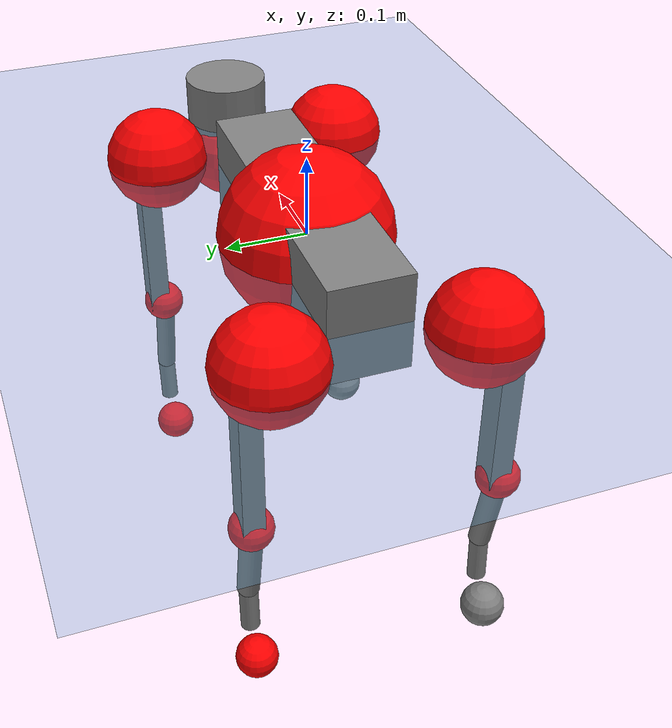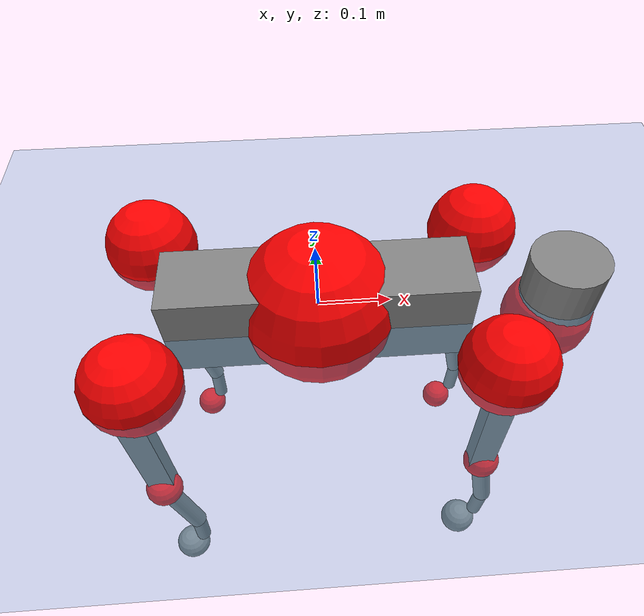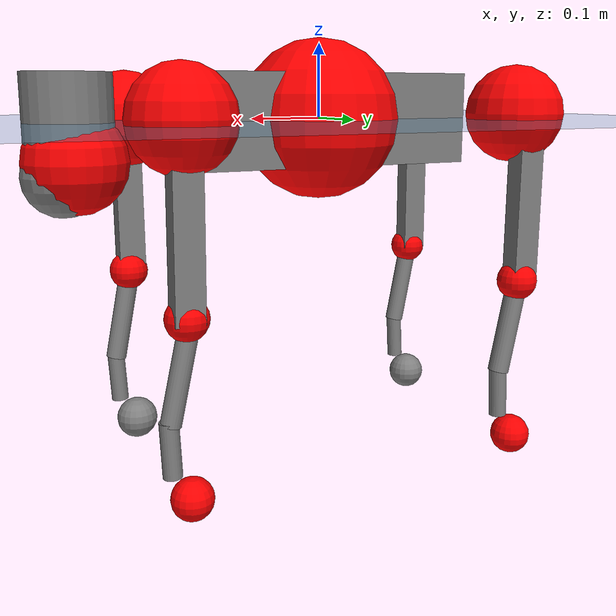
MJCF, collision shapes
<mujoco model="go2">
  <compiler angle="radian" assetdir="assets" balanceinertia="true" inertiafromgeom="false"/>

  <option timestep="0.005" density="1.2" viscosity="2e-05"/>

  <size nkey="1"/>

  <visual>
    <quality shadowsize="8192"/>
    <map shadowclip="0.5"/>
  </visual>

  <default>
    <default class="/">
      <geom contype="0" conaffinity="0" group="1" solref="-1000 -80"/>
      <site size="0.01 0.005 0.005" group="5"/>
      <general forcelimited="true" biastype="affine" gainprm="20" biasprm="0 -20 -0.5"/>
      <default class="go2">
        <joint armature="0.01" damping="0.01" frictionloss="0.2"/>
        <geom condim="1" margin="0.001"/>
        <default class="visual">
          <geom type="mesh" group="2"/>
        </default>
        <default class="collision">
          <geom group="3"/>
          <default class="foot">
            <geom size="0.022 0 0" condim="6" priority="1" friction="0.8 0.02 0.01" solimp="0.015 1 0.022"/>
          </default>
        </default>
        <default class="reward_collision_sphere">
          <geom group="5" rgba="1 0 0 1"/>
        </default>
      </default>
    </default>
  </default>

  <asset>
    <texture type="skybox" colorspace="auto" name="//unnamed_texture_0" builtin="gradient" rgb1="0.95 0.95 0.95" rgb2="0.95 0.95 0.95" width="100" height="600"/>
    <texture type="2d" colorspace="auto" name="texplane" builtin="checker" rgb1="0.345 0.575 0.748" rgb2="0.345 0.575 0.748" markrgb="1 1 1" width="512" height="512"/>
    <material name="MatPlane" class="/" texture="texplane" texuniform="true" texrepeat="2 2" specular="0.9"/>
    <material name="metal" class="/" rgba="0.9 0.95 0.95 1"/>
    <material name="black" class="/" rgba="0 0 0 1"/>
    <material name="white" class="/"/>
    <material name="gray" class="/" rgba="0.671705 0.692426 0.77427 1"/>
    <mesh name="base_0" class="/" file="base_0.obj"/>
    <mesh name="base_1" class="/" file="base_1.obj"/>
    <mesh name="base_2" class="/" file="base_2.obj"/>
    <mesh name="base_3" class="/" file="base_3.obj"/>
    <mesh name="base_4" class="/" file="base_4.obj"/>
    <mesh name="hip_0" class="/" file="hip_0.obj"/>
    <mesh name="hip_1" class="/" file="hip_1.obj"/>
    <mesh name="thigh_0" class="/" file="thigh_0.obj"/>
    <mesh name="thigh_1" class="/" file="thigh_1.obj"/>
    <mesh name="thigh_mirror_0" class="/" file="thigh_mirror_0.obj"/>
    <mesh name="thigh_mirror_1" class="/" file="thigh_mirror_1.obj"/>
    <mesh name="calf_0" class="/" file="calf_0.obj"/>
    <mesh name="calf_1" class="/" file="calf_1.obj"/>
    <mesh name="calf_mirror_0" class="/" file="calf_mirror_0.obj"/>
    <mesh name="calf_mirror_1" class="/" file="calf_mirror_1.obj"/>
    <mesh name="foot" class="/" file="foot.obj"/>
  </asset>

  <worldbody>
    <geom name="floor" class="/" size="100 100 0.125" type="plane" group="0" material="MatPlane"/>
    <light name="toplight_shadow" class="/" pos="0 0 5" dir="0.0990148 0.0990148 -0.990148" type="directional" ambient="0.04 0.04 0.04" diffuse="0.55 0.55 0.55" specular="0.12 0.12 0.12"/>
    <light name="toplight_fill" class="/" pos="0 0 5" dir="0.0990148 0.0990148 -0.990148" type="directional" castshadow="false" ambient="0.04 0.04 0.04" diffuse="0.3 0.3 0.3" specular="0.08 0.08 0.08"/>
    <body name="trunk" childclass="go2" pos="6.11847e-05 5.0348e-05 -0.00119129" quat="0.999999 -0.000963606 -0.000663086 -0.000117167">
      <inertial pos="0.0356105 0.00760563 -0.00363909" quat="-0.000118304 0.714537 -0.00283773 0.699592" mass="8.11557" diaginertia="0.25302 0.109929 0.0350924"/>
      <joint name="//unnamed_joint_0" type="free" armature="0" damping="0" frictionloss="0"/>
      <geom name="//unnamed_geom_1" class="visual" material="black" mesh="base_0"/>
      <geom name="//unnamed_geom_2" class="visual" material="black" mesh="base_1"/>
      <geom name="//unnamed_geom_3" class="visual" material="black" mesh="base_2"/>
      <geom name="//unnamed_geom_4" class="visual" material="white" mesh="base_3"/>
      <geom name="//unnamed_geom_5" class="visual" material="gray" mesh="base_4"/>
      <geom name="trunk_1" class="collision" size="0.205145 0.0509864 0.0621653" type="box"/>
      <geom name="trunk_2" class="collision" size="0.0545309 0.0490778" pos="0.336654 0 0.010681" type="cylinder"/>
      <geom name="trunk_3" class="collision" size="0.0512591" pos="0.346104 0 -0.064086"/>
      <geom name="//unnamed_geom_9" class="reward_collision_sphere" size="0.109062"/>
      <geom name="//unnamed_geom_10" class="reward_collision_sphere" size="0.0654371" pos="0.330748 0 -0.0480645"/>
      <site name="imu" pos="-0.0739953 0.00243 0.0887171" size="0.0109062"/>
      <camera name="track" pos="0 -2.04503 0" quat="0.707107 0.707107 0 0" mode="trackcom"/>
      <camera name="ego_camera" pos="0.368547 0 0.0480645" quat="-0.5 -0.5 0.5 0.5"/>
      <body name="FL_hip" pos="0.23472 0.0543349 0.00659696" quat="1 -0.000211652 -0.000329545 0.000731503">
        <inertial pos="-0.0063858 0.00800896 -0.00190157" quat="0.497199 0.499412 0.503553 0.499815" mass="0.958222" diaginertia="0.00234504 0.000818731 0.000754161"/>
        <joint name="FL_hip_joint" pos="0 0 0" axis="0.999863 -0.0145282 -0.00797721" stiffness="0.0238945" range="-1.04213 1.0069" armature="0.0118975" damping="0" frictionloss="0.271353"/>
        <geom name="//unnamed_geom_11" class="visual" material="metal" mesh="hip_0"/>
        <geom name="//unnamed_geom_12" class="visual" material="gray" mesh="hip_1"/>
        <geom name="//unnamed_geom_13" class="collision" size="0.0501685 0.0218124" pos="0 0.0818012 0" quat="0.707107 0.707107 0 0" type="cylinder"/>
        <geom name="//unnamed_geom_14" class="reward_collision_sphere" size="0.0654371" pos="0 0.071576 0"/>
        <body name="FL_thigh" pos="0.00380217 0.0881387 -0.0033767" quat="0.999992 -0.00169585 -0.00259286 0.00265608">
          <inertial pos="-0.00225597 -0.0221503 -0.0383915" quat="0.832317 0.111737 -0.00696028 0.542877" mass="1.55722" diaginertia="0.0134553 0.00717992 0.0011847"/>
          <joint name="FL_thigh_joint" pos="0 0 0" axis="-9.12989e-05 1 -0.000908847" range="-1.72567 3.39538" armature="0.0110018" damping="0" frictionloss="0.258526"/>
          <geom name="//unnamed_geom_15" class="visual" material="metal" mesh="thigh_0"/>
          <geom name="//unnamed_geom_16" class="visual" material="gray" mesh="thigh_1"/>
          <geom name="//unnamed_geom_17" class="collision" size="0.116151 0.0133601 0.0185405" pos="0 0 -0.113753" quat="0.707107 0 0.707107 0" type="box"/>
          <body name="FL_calf" pos="-0.00200991 -0.00808178 -0.225801" quat="1 -3.15074e-05 8.03436e-05 2.30513e-06">
            <inertial pos="0.00626925 3.37694e-05 -0.148236" quat="0.714891 0.000208384 -0.00921863 0.699175" mass="0.312639" diaginertia="0.00368437 0.00165161 7.35023e-05"/>
            <joint name="FL_calf_joint" pos="0 0 0" axis="0.00386826 0.99999 0.00242086" stiffness="0.0368571" range="-2.81666 -0.808714" armature="0.0103997" damping="0.0153924" frictionloss="0.233686"/>
            <geom name="//unnamed_geom_18" class="visual" material="gray" mesh="calf_0"/>
            <geom name="//unnamed_geom_19" class="visual" material="black" mesh="calf_1"/>
            <geom name="FL_calf0" class="collision" size="0.0130874 0.0654371" pos="0.00944993 0 -0.064086" quat="0.994493 0 -0.104807 0" type="cylinder"/>
            <geom name="//unnamed_geom_21" class="collision" size="0.0119968 0.0354451" pos="0.0236248 0 -0.158079" quat="0.999688 0 0.0249974 0" type="cylinder"/>
            <geom name="//unnamed_geom_22" class="visual" pos="0 0 -0.227505" quat="1 0 0 0" material="black" mesh="foot"/>
            <geom name="FL_foot" class="foot" size="0.0255302" pos="-0.00236248 0 -0.227505"/>
            <geom name="//unnamed_geom_24" class="reward_collision_sphere" size="0.0272655"/>
            <geom name="//unnamed_geom_25" class="reward_collision_sphere" size="0.0272655" pos="-0.00236248 0 -0.227505"/>
            <site name="FL_foot" class="foot" pos="-0.00236248 0 -0.227505" size="0.0109062"/>
          </body>
        </body>
      </body>
      <body name="FR_hip" pos="0.237487 -0.0509953 7.1508e-05" quat="1 -0.000903116 0.000259614 -0.000108249">
        <inertial pos="-0.00196106 0.00897286 0.00460783" quat="0.458728 0.520322 0.495848 0.522464" mass="0.870485" diaginertia="0.00222797 0.000602509 0.000726363"/>
        <joint name="FR_hip_joint" pos="0 0 0" axis="0.999431 -0.0238417 0.023876" range="-1.0245 1.03162" armature="0.0108866" damping="0.036504" frictionloss="0.202373"/>
        <geom name="//unnamed_geom_26" class="visual" pos="0 -3.97113e-10 -1.7033e-08" quat="4.63268e-05 1 0 0" material="metal" mesh="hip_0"/>
        <geom name="//unnamed_geom_27" class="visual" pos="0 -6.43768e-10 4.21292e-08" quat="4.63268e-05 1 0 0" material="gray" mesh="hip_1"/>
        <geom name="//unnamed_geom_28" class="collision" size="0.0501685 0.0218124" pos="0 -0.0818012 0" quat="0.707107 0.707107 0 0" type="cylinder"/>
        <geom name="//unnamed_geom_29" class="reward_collision_sphere" size="0.0654371" pos="0 -0.071576 0"/>
        <body name="FR_thigh" pos="-0.00350293 -0.0940449 0.00741374" quat="0.999994 0.00238472 0.00182921 0.00196266">
          <inertial pos="-0.0133598 0.0235141 -0.0311687" quat="0.557697 -0.00473354 0.0741363 0.826714" mass="1.36167" diaginertia="0.0143008 0.00703354 0.00107614"/>
          <joint name="FR_thigh_joint" pos="0 0 0" axis="0.0125361 -0.999906 -0.00562095" range="-3.51453 1.55568" armature="0.0132257" damping="0" frictionloss="0.196054"/>
          <geom name="//unnamed_geom_30" class="visual" material="metal" mesh="thigh_mirror_0"/>
          <geom name="//unnamed_geom_31" class="visual" material="gray" mesh="thigh_mirror_1"/>
          <geom name="//unnamed_geom_32" class="collision" size="0.116151 0.0133601 0.0185405" pos="0 0 -0.113753" quat="0.707107 0 0.707107 0" type="box"/>
          <body name="FR_calf" pos="0.00379521 0.000101663 -0.227247" quat="0.999998 0.00149294 -0.000254296 0.00111855">
            <inertial pos="0.0136106 0.000771709 -0.15155" quat="0.673844 -0.0308669 0.00592466 0.738205" mass="0.274158" diaginertia="0.00307831 0.00155233 6.85578e-05"/>
            <joint name="FR_calf_joint" pos="0 0 0" axis="-0.0259746 -0.999659 -0.0028338" stiffness="0.0434557" range="1.01885 2.80349" armature="0.00702039" damping="0" frictionloss="0.192026"/>
            <geom name="//unnamed_geom_33" class="visual" material="gray" mesh="calf_mirror_0"/>
            <geom name="//unnamed_geom_34" class="visual" material="black" mesh="calf_mirror_1"/>
            <geom name="FR_calf0" class="collision" size="0.014178 0.0654371" pos="0.0118124 0 -0.064086" quat="0.995004 0 -0.0998334 0" type="cylinder"/>
            <geom name="//unnamed_geom_36" class="collision" size="0.0119968 0.0354451" pos="0.0236248 0 -0.158079" quat="0.999688 0 0.0249974 0" type="cylinder"/>
            <geom name="//unnamed_geom_37" class="visual" pos="0 0 -0.227505" quat="1 0 0 0" material="black" mesh="foot"/>
            <geom name="FR_foot" class="foot" size="0.0296565" pos="-0.00236248 0 -0.227505"/>
            <geom name="//unnamed_geom_39" class="reward_collision_sphere" size="0.0272655"/>
            <geom name="//unnamed_geom_40" class="reward_collision_sphere" size="0.0272655" pos="-0.00236248 0 -0.227505"/>
            <site name="FR_foot" class="foot" pos="-0.00236248 0 -0.227505" size="0.0109062"/>
          </body>
        </body>
      </body>
      <body name="RL_hip" pos="-0.236285 0.052584 0.00790143" quat="0.999999 0.000315509 -0.000411435 0.00127664">
        <inertial pos="0.00712901 -0.0030623 0.0096392" quat="0.491443 0.517986 0.508939 0.480786" mass="0.783773" diaginertia="0.00155398 0.000587037 0.000615981"/>
        <joint name="RL_hip_joint" pos="0 0 0" axis="-0.999466 -0.0214157 0.0246597" stiffness="0.0117216" range="-1.07078 1.02195" armature="0.00962572" damping="0.0498499" frictionloss="0.223758"/>
        <geom name="//unnamed_geom_41" class="visual" pos="-9.85645e-10 0 -1.93209e-07" quat="4.63268e-05 0 1 0" material="metal" mesh="hip_0"/>
        <geom name="//unnamed_geom_42" class="visual" pos="-1.59785e-09 0 -1.71349e-07" quat="4.63268e-05 0 1 0" material="gray" mesh="hip_1"/>
        <geom name="//unnamed_geom_43" class="collision" size="0.0501685 0.0218124" pos="0 0.0818012 0" quat="0.707107 0.707107 0 0" type="cylinder"/>
        <geom name="//unnamed_geom_44" class="reward_collision_sphere" size="0.0654371" pos="0 0.071576 0"/>
        <body name="RL_thigh" pos="-0.000476391 0.0993431 -0.00278556" quat="1 -0.000335985 -0.000244352 0.000630549">
          <inertial pos="0.00625011 -0.0238593 -0.0254426" quat="0.832276 0.0811217 -0.0217323 0.547963" mass="1.63104" diaginertia="0.0164403 0.00650349 0.00127886"/>
          <joint name="RL_thigh_joint" pos="0 0 0" axis="0.0207162 0.99966 -0.0158551" range="-0.462252 4.63363" armature="0.0112474" damping="0.0378869" frictionloss="0.222512"/>
          <geom name="//unnamed_geom_45" class="visual" material="metal" mesh="thigh_0"/>
          <geom name="//unnamed_geom_46" class="visual" material="gray" mesh="thigh_1"/>
          <geom name="//unnamed_geom_47" class="collision" size="0.116151 0.0133601 0.0185405" pos="0 0 -0.113753" quat="0.707107 0 0.707107 0" type="box"/>
          <body name="RL_calf" pos="0.00198738 -0.00217402 -0.225399" quat="1 -0.000172166 -0.000431542 -8.27654e-05">
            <inertial pos="0.0043471 -0.00848731 -0.15016" quat="0.709738 0.0183406 0.00962095 0.704161" mass="0.272314" diaginertia="0.00314726 0.00128075 6.33346e-05"/>
            <joint name="RL_calf_joint" pos="0 0 0" axis="-0.0126475 0.999906 -0.00532934" range="-2.87247 -0.733588" armature="0.00620545" damping="0" frictionloss="0.294089"/>
            <geom name="//unnamed_geom_48" class="visual" material="gray" mesh="calf_0"/>
            <geom name="//unnamed_geom_49" class="visual" material="black" mesh="calf_1"/>
            <geom name="RL_calf0" class="collision" size="0.014178 0.0654371" pos="0.0118124 0 -0.064086" quat="0.995004 0 -0.0998334 0" type="cylinder"/>
            <geom name="//unnamed_geom_51" class="collision" size="0.0119968 0.0354451" pos="0.0236248 0 -0.158079" quat="0.999688 0 0.0249974 0" type="cylinder"/>
            <geom name="//unnamed_geom_52" class="visual" pos="0 0 -0.227505" quat="1 0 0 0" material="black" mesh="foot"/>
            <geom name="RL_foot" class="foot" size="0.0217372" pos="-0.00236248 0 -0.227505"/>
            <geom name="//unnamed_geom_54" class="reward_collision_sphere" size="0.0272655"/>
            <geom name="//unnamed_geom_55" class="reward_collision_sphere" size="0.0272655" pos="-0.00236248 0 -0.227505"/>
            <site name="RL_foot" class="foot" pos="-0.00236248 0 -0.227505" size="0.0109062"/>
          </body>
        </body>
      </body>
      <body name="RR_hip" pos="-0.239163 -0.0458427 -0.00198642" quat="0.999999 -0.000875637 0.000146242 -0.000469534">
        <inertial pos="0.0104139 -0.00535914 0.00919799" quat="0.522432 0.46429 0.47467 0.534965" mass="0.906577" diaginertia="0.00229265 0.000765414 0.000756903"/>
        <joint name="RR_hip_joint" pos="0 0 0" axis="-0.999085 -0.041503 -0.0103165" stiffness="0.00870849" range="-0.886353 0.982283" armature="0.0119439" damping="0.0250206" frictionloss="0.212671"/>
        <geom name="//unnamed_geom_56" class="visual" pos="9.8015e-10 -3.97113e-10 -1.76176e-07" quat="2.14617e-09 4.63268e-05 4.63268e-05 -1" material="metal" mesh="hip_0"/>
        <geom name="//unnamed_geom_57" class="visual" pos="1.61144e-09 -6.43768e-10 -2.13478e-07" quat="2.14617e-09 4.63268e-05 4.63268e-05 -1" material="gray" mesh="hip_1"/>
        <geom name="//unnamed_geom_58" class="collision" size="0.0501685 0.0218124" pos="0 -0.0818012 0" quat="0.707107 0.707107 0 0" type="cylinder"/>
        <geom name="//unnamed_geom_59" class="reward_collision_sphere" size="0.0654371" pos="0 -0.071576 0"/>
        <body name="RR_thigh" pos="-0.00961569 -0.0994761 0.00806784" quat="0.999993 -0.00114634 0.00296096 -0.00178575">
          <inertial pos="-0.00293841 0.0189032 -0.0347133" quat="0.551642 -0.0201285 0.0849169 0.829503" mass="1.6938" diaginertia="0.0155264 0.00673275 0.00126572"/>
          <joint name="RR_thigh_joint" pos="0 0 0" axis="0.000379618 -0.999999 -0.00130802" range="-4.61826 0.537033" armature="0.0104029" damping="0" frictionloss="0.210877"/>
          <geom name="//unnamed_geom_60" class="visual" material="metal" mesh="thigh_mirror_0"/>
          <geom name="//unnamed_geom_61" class="visual" material="gray" mesh="thigh_mirror_1"/>
          <geom name="//unnamed_geom_62" class="collision" size="0.116151 0.0133601 0.0185405" pos="0 0 -0.113753" quat="0.707107 0 0.707107 0" type="box"/>
          <body name="RR_calf" pos="0.000225401 -0.00704978 -0.228941" quat="0.99999 0.0011168 0.000852324 0.00417538">
            <inertial pos="0.000682882 0.00301402 -0.151332" quat="0.717913 0.0177195 0.00638707 0.695877" mass="0.30107" diaginertia="0.00347404 0.00163071 7.64817e-05"/>
            <joint name="RR_calf_joint" pos="0 0 0" axis="-0.0159506 -0.99987 0.00252605" range="0.840681 2.55759" armature="0.0107685" damping="0" frictionloss="0.192808"/>
            <geom name="//unnamed_geom_63" class="visual" material="gray" mesh="calf_mirror_0"/>
            <geom name="//unnamed_geom_64" class="visual" material="black" mesh="calf_mirror_1"/>
            <geom name="RR_calf0" class="collision" size="0.014178 0.0654371" pos="0.0118124 0 -0.064086" quat="0.995004 0 -0.0998334 0" type="cylinder"/>
            <geom name="//unnamed_geom_66" class="collision" size="0.0119968 0.0354451" pos="0.0236248 0 -0.158079" quat="0.999688 0 0.0249974 0" type="cylinder"/>
            <geom name="//unnamed_geom_67" class="visual" pos="0 0 -0.227505" quat="1 0 0 0" material="black" mesh="foot"/>
            <geom name="RR_foot" class="foot" size="0.0287008" pos="-0.00236248 0 -0.227505"/>
            <geom name="//unnamed_geom_69" class="reward_collision_sphere" size="0.0272655"/>
            <geom name="//unnamed_geom_70" class="reward_collision_sphere" size="0.0272655" pos="-0.00236248 0 -0.227505"/>
            <site name="RR_foot" class="foot" pos="-0.00236248 0 -0.227505" size="0.0109062"/>
          </body>
        </body>
      </body>
    </body>
  </worldbody>

  <contact>
    <pair class="/" geom1="floor" geom2="FL_foot" name="//unnamed_contact_0"/>
    <pair class="/" geom1="floor" geom2="FR_foot" name="//unnamed_contact_1"/>
    <pair class="/" geom1="floor" geom2="RL_foot" name="//unnamed_contact_2"/>
    <pair class="/" geom1="floor" geom2="RR_foot" name="//unnamed_contact_3"/>
  </contact>

  <actuator>
    <general name="FL_hip" class="/" joint="FL_hip_joint" forcerange="-31.9359 31.9359" gainprm="23.8559" biasprm="0 -23.8559 -0.594963"/>
    <general name="FL_thigh" class="/" joint="FL_thigh_joint" forcerange="-34.8721 34.8721" gainprm="23.8559" biasprm="0 -23.8559 -0.594963"/>
    <general name="FL_calf" class="/" joint="FL_calf_joint" forcerange="-51.5345 51.5345" gainprm="23.8559" biasprm="0 -23.8559 -0.594963"/>
    <general name="FR_hip" class="/" joint="FR_hip_joint" forcerange="-27.4825 27.4825" gainprm="23.8559" biasprm="0 -23.8559 -0.594963"/>
    <general name="FR_thigh" class="/" joint="FR_thigh_joint" forcerange="-20.6709 20.6709" gainprm="23.8559" biasprm="0 -23.8559 -0.594963"/>
    <general name="FR_calf" class="/" joint="FR_calf_joint" forcerange="-48.1574 48.1574" gainprm="23.8559" biasprm="0 -23.8559 -0.594963"/>
    <general name="RL_hip" class="/" joint="RL_hip_joint" forcerange="-25.1955 25.1955" gainprm="23.8559" biasprm="0 -23.8559 -0.594963"/>
    <general name="RL_thigh" class="/" joint="RL_thigh_joint" forcerange="-31.4186 31.4186" gainprm="23.8559" biasprm="0 -23.8559 -0.594963"/>
    <general name="RL_calf" class="/" joint="RL_calf_joint" forcerange="-47.0404 47.0404" gainprm="23.8559" biasprm="0 -23.8559 -0.594963"/>
    <general name="RR_hip" class="/" joint="RR_hip_joint" forcerange="-24.5675 24.5675" gainprm="23.8559" biasprm="0 -23.8559 -0.594963"/>
    <general name="RR_thigh" class="/" joint="RR_thigh_joint" forcerange="-18.5697 18.5697" gainprm="23.8559" biasprm="0 -23.8559 -0.594963"/>
    <general name="RR_calf" class="/" joint="RR_calf_joint" forcerange="-50.5293 50.5293" gainprm="23.8559" biasprm="0 -23.8559 -0.594963"/>
  </actuator>

  <sensor>
    <gyro site="imu" name="imu_angular_velocity"/>
    <velocimeter site="imu" name="imu_linear_velocity"/>
    <framelinvel objtype="site" objname="FL_foot" name="FL_foot_global_linear_velocity"/>
    <framelinvel objtype="site" objname="FR_foot" name="FR_foot_global_linear_velocity"/>
    <framelinvel objtype="site" objname="RL_foot" name="RL_foot_global_linear_velocity"/>
    <framelinvel objtype="site" objname="RR_foot" name="RR_foot_global_linear_velocity"/>
  </sensor>

  <keyframe>
    <key name="home" qpos="0 0 0.325 1 0 0 0 0.1 0.8 -1.5 -0.1 -0.8 1.5 -0.1 0.8 -1.5 0.1 -0.8 1.5"/>
  </keyframe>
</mujoco>
